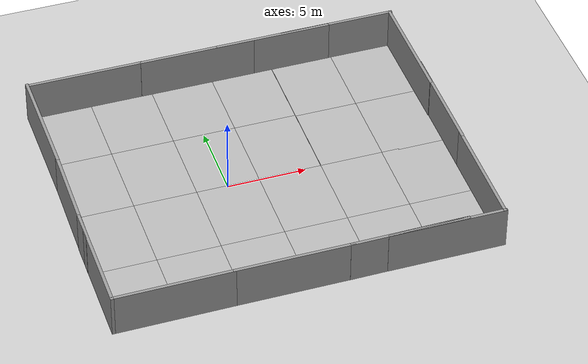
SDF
<sdf version="1.4">
 <world name="default">
  <light name="sun" type="directional">
   <pose>0 0 10 0 -0 0</pose>
   <diffuse>0.8 0.8 0.8 1</diffuse>
   <specular>0.2 0.2 0.2 1</specular>
   <attenuation>
    <range>1000</range>
    <constant>0.9</constant>
    <linear>0.01</linear>
    <quadratic>0.001</quadratic>
   </attenuation>
   <direction>-0.5 0.1 -0.9</direction>
  </light>
  <model name="ground_plane">
   <static>1</static>
   <link name="link">
    <collision name="collision">
     <geometry><plane><normal>0 0 1</normal><size>100 100</size></plane></geometry>
     <surface><friction><ode><mu>100</mu><mu2>50</mu2></ode></friction></surface>
    </collision>
    <visual name="visual">
     <cast_shadows>0</cast_shadows>
     <geometry><plane><normal>0 0 1</normal><size>100 100</size></plane></geometry>
     <material>
      <script><uri>file://media/materials/scripts/gazebo.material</uri><name>Gazebo/Grey</name></script>
     </material>
    </visual>
    <velocity_decay><linear>0</linear><angular>0</angular></velocity_decay>
   </link>
  </model>
  <physics type="ode">
   <max_step_size>0.001</max_step_size>
   <real_time_factor>1</real_time_factor>
   <real_time_update_rate>1000</real_time_update_rate>
   <gravity>0 0 -9.8</gravity>
  </physics>
  <scene><ambient>0.4 0.4 0.4 1</ambient><background>0.7 0.7 0.7 1</background><shadows>1</shadows></scene>
  <spherical_coordinates>
   <surface_model>EARTH_WGS84</surface_model>
   <latitude_deg>0</latitude_deg>
   <longitude_deg>0</longitude_deg>
   <elevation>0</elevation>
   <heading_deg>0</heading_deg>
  </spherical_coordinates>
  <model name="grey_wall">
   <static>1</static>
   <link name="link">
    <pose>0 0 1.4 0 -0 0</pose>
    <collision name="collision"><geometry><box><size>7.5 0.2 2.8</size></box></geometry></collision>
    <visual name="visual">
     <cast_shadows>0</cast_shadows>
     <geometry><box><size>7.5 0.2 2.8</size></box></geometry>
     <material>
      <script>
       <uri>model://grey_wall/materials/scripts</uri>
       <uri>model://grey_wall/materials/textures</uri>
       <name>vrc/grey_wall</name>
      </script>
     </material>
    </visual>
    <velocity_decay><linear>0</linear><angular>0</angular></velocity_decay>
   </link>
   <pose>-6.29738 9.84653 0 0 -0 0.000801</pose>
  </model>
  <model name="grey_wall_0">
   <static>1</static>
   <link name="link">
    <pose>0 0 1.4 0 -0 0</pose>
    <collision name="collision"><geometry><box><size>7.5 0.2 2.8</size></box></geometry></collision>
    <visual name="visual">
     <cast_shadows>0</cast_shadows>
     <geometry><box><size>7.5 0.2 2.8</size></box></geometry>
     <material>
      <script>
       <uri>model://grey_wall/materials/scripts</uri>
       <uri>model://grey_wall/materials/textures</uri>
       <name>vrc/grey_wall</name>
      </script>
     </material>
    </visual>
    <velocity_decay><linear>0</linear><angular>0</angular></velocity_decay>
   </link>
   <pose>-9.97339 6.2675 0 0 -0 1.57507</pose>
  </model>
  <model name="grey_wall_1">
   <static>1</static>
   <link name="link">
    <pose>0 0 1.4 0 -0 0</pose>
    <collision name="collision"><geometry><box><size>7.5 0.2 2.8</size></box></geometry></collision>
    <visual name="visual">
     <cast_shadows>0</cast_shadows>
     <geometry><box><size>7.5 0.2 2.8</size></box></geometry>
     <material>
      <script>
       <uri>model://grey_wall/materials/scripts</uri>
       <uri>model://grey_wall/materials/textures</uri>
       <name>vrc/grey_wall</name>
      </script>
     </material>
    </visual>
    <velocity_decay><linear>0</linear><angular>0</angular></velocity_decay>
   </link>
   <pose>1.08107 9.84256 0 0 -0 0</pose>
  </model>
  <model name="grey_wall_2">
   <static>1</static>
   <link name="link">
    <pose>0 0 1.4 0 -0 0</pose>
    <collision name="collision"><geometry><box><size>7.5 0.2 2.8</size></box></geometry></collision>
    <visual name="visual">
     <cast_shadows>0</cast_shadows>
     <geometry><box><size>7.5 0.2 2.8</size></box></geometry>
     <material>
      <script>
       <uri>model://grey_wall/materials/scripts</uri>
       <uri>model://grey_wall/materials/textures</uri>
       <name>vrc/grey_wall</name>
      </script>
     </material>
    </visual>
    <velocity_decay><linear>0</linear><angular>0</angular></velocity_decay>
   </link>
   <pose>0.969775 -9.9536 0 0 -0 0</pose>
  </model>
  <model name="grey_wall_3">
   <static>1</static>
   <link name="link">
    <pose>0 0 1.4 0 -0 0</pose>
    <collision name="collision"><geometry><box><size>7.5 0.2 2.8</size></box></geometry></collision>
    <visual name="visual">
     <cast_shadows>0</cast_shadows>
     <geometry><box><size>7.5 0.2 2.8</size></box></geometry>
     <material>
      <script>
       <uri>model://grey_wall/materials/scripts</uri>
       <uri>model://grey_wall/materials/textures</uri>
       <name>vrc/grey_wall</name>
      </script>
     </material>
    </visual>
    <velocity_decay><linear>0</linear><angular>0</angular></velocity_decay>
   </link>
   <pose>-6.35027 -9.97183 0 0 -0 0.00465</pose>
  </model>
  <model name="grey_wall_4">
   <static>1</static>
   <link name="link">
    <pose>0 0 1.4 0 -0 0</pose>
    <collision name="collision"><geometry><box><size>7.5 0.2 2.8</size></box></geometry></collision>
    <visual name="visual">
     <cast_shadows>0</cast_shadows>
     <geometry><box><size>7.5 0.2 2.8</size></box></geometry>
     <material>
      <script>
       <uri>model://grey_wall/materials/scripts</uri>
       <uri>model://grey_wall/materials/textures</uri>
       <name>vrc/grey_wall</name>
      </script>
     </material>
    </visual>
    <velocity_decay><linear>0</linear><angular>0</angular></velocity_decay>
   </link>
   <pose>-10.0196 -0.994888 0 0 0 -1.5859</pose>
  </model>
  <model name="grey_wall_5">
   <static>1</static>
   <link name="link">
    <pose>0 0 1.4 0 -0 0</pose>
    <collision name="collision"><geometry><box><size>7.5 0.2 2.8</size></box></geometry></collision>
    <visual name="visual">
     <cast_shadows>0</cast_shadows>
     <geometry><box><size>7.5 0.2 2.8</size></box></geometry>
     <material>
      <script>
       <uri>model://grey_wall/materials/scripts</uri>
       <uri>model://grey_wall/materials/textures</uri>
       <name>vrc/grey_wall</name>
      </script>
     </material>
    </visual>
    <velocity_decay><linear>0</linear><angular>0</angular></velocity_decay>
   </link>
   <pose>14.0958 -6.28938 0 0 0 -1.57176</pose>
  </model>
  <model name="grey_wall_6">
   <static>1</static>
   <link name="link">
    <pose>0 0 1.4 0 -0 0</pose>
    <collision name="collision"><geometry><box><size>7.5 0.2 2.8</size></box></geometry></collision>
    <visual name="visual">
     <cast_shadows>0</cast_shadows>
     <geometry><box><size>7.5 0.2 2.8</size></box></geometry>
     <material>
      <script>
       <uri>model://grey_wall/materials/scripts</uri>
       <uri>model://grey_wall/materials/textures</uri>
       <name>vrc/grey_wall</name>
      </script>
     </material>
    </visual>
    <velocity_decay><linear>0</linear><angular>0</angular></velocity_decay>
   </link>
   <pose>14.0402 6.15104 0 0 0 -1.56247</pose>
  </model>
  <model name="grey_wall_7">
   <static>1</static>
   <link name="link">
    <pose>0 0 1.4 0 -0 0</pose>
    <collision name="collision"><geometry><box><size>7.5 0.2 2.8</size></box></geometry></collision>
    <visual name="visual">
     <cast_shadows>0</cast_shadows>
     <geometry><box><size>7.5 0.2 2.8</size></box></geometry>
     <material>
      <script>
       <uri>model://grey_wall/materials/scripts</uri>
       <uri>model://grey_wall/materials/textures</uri>
       <name>vrc/grey_wall</name>
      </script>
     </material>
    </visual>
    <velocity_decay><linear>0</linear><angular>0</angular></velocity_decay>
   </link>
   <pose>6.10797 9.84916 0 0 -0 0</pose>
  </model>
  <model name="grey_wall_8">
   <static>1</static>
   <link name="link">
    <pose>0 0 1.4 0 -0 0</pose>
    <collision name="collision"><geometry><box><size>7.5 0.2 2.8</size></box></geometry></collision>
    <visual name="visual">
     <cast_shadows>0</cast_shadows>
     <geometry><box><size>7.5 0.2 2.8</size></box></geometry>
     <material>
      <script>
       <uri>model://grey_wall/materials/scripts</uri>
       <uri>model://grey_wall/materials/textures</uri>
       <name>vrc/grey_wall</name>
      </script>
     </material>
    </visual>
    <velocity_decay><linear>0</linear><angular>0</angular></velocity_decay>
   </link>
   <pose>8.16072 -9.92982 0 0 -0 0.008161</pose>
  </model>
  <model name="grey_wall_9">
   <static>1</static>
   <link name="link">
    <pose>0 0 1.4 0 -0 0</pose>
    <collision name="collision"><geometry><box><size>7.5 0.2 2.8</size></box></geometry></collision>
    <visual name="visual">
     <cast_shadows>0</cast_shadows>
     <geometry><box><size>7.5 0.2 2.8</size></box></geometry>
     <material>
      <script>
       <uri>model://grey_wall/materials/scripts</uri>
       <uri>model://grey_wall/materials/textures</uri>
       <name>vrc/grey_wall</name>
      </script>
     </material>
    </visual>
    <velocity_decay><linear>0</linear><angular>0</angular></velocity_decay>
   </link>
   <pose>-10.0691 -6.34271 0 0 0 -1.57267</pose>
  </model>
  <model name="grey_wall_10">
   <static>1</static>
   <link name="link">
    <pose>0 0 1.4 0 -0 0</pose>
    <collision name="collision"><geometry><box><size>7.5 0.2 2.8</size></box></geometry></collision>
    <visual name="visual">
     <cast_shadows>0</cast_shadows>
     <geometry><box><size>7.5 0.2 2.8</size></box></geometry>
     <material>
      <script>
       <uri>model://grey_wall/materials/scripts</uri>
       <uri>model://grey_wall/materials/textures</uri>
       <name>vrc/grey_wall</name>
      </script>
     </material>
    </visual>
    <velocity_decay><linear>0</linear><angular>0</angular></velocity_decay>
   </link>
   <pose>14.1043 0.796248 0 0 0 -1.5675</pose>
  </model>
  <model name="mud_box">
   <static>1</static>
   <link name="link">
    <collision name="collision"><geometry><box><size>8 10 0.2</size></box></geometry></collision>
    <visual name="visual_1">
     <pose>-2 2.5 0 0 -0 0</pose>
     <cast_shadows>0</cast_shadows>
     <geometry><box><size>4 5 0.2</size></box></geometry>
     <material>
      <script>
       <uri>model://mud_box/materials/scripts</uri>
       <uri>model://mud_box/materials/textures</uri>
       <name>vrc/mud</name>
      </script>
     </material>
    </visual>
    <visual name="visual_2">
     <pose>2 2.5 0 0 -0 0</pose>
     <cast_shadows>0</cast_shadows>
     <geometry><box><size>4 5 0.2</size></box></geometry>
     <material>
      <script>
       <uri>model://mud_box/materials/scripts</uri>
       <uri>model://mud_box/materials/textures</uri>
       <name>vrc/mud</name>
      </script>
     </material>
    </visual>
    <visual name="visual_3">
     <pose>2 -2.5 0 0 -0 0</pose>
     <cast_shadows>0</cast_shadows>
     <geometry><box><size>4 5 0.2</size></box></geometry>
     <material>
      <script>
       <uri>model://mud_box/materials/scripts</uri>
       <uri>model://mud_box/materials/textures</uri>
       <name>vrc/mud</name>
      </script>
     </material>
    </visual>
    <visual name="visual_4">
     <pose>-2 -2.5 0 0 -0 0</pose>
     <cast_shadows>0</cast_shadows>
     <geometry><box><size>4 5 0.2</size></box></geometry>
     <material>
      <script>
       <uri>model://mud_box/materials/scripts</uri>
       <uri>model://mud_box/materials/textures</uri>
       <name>vrc/mud</name>
      </script>
     </material>
    </visual>
    <velocity_decay><linear>0</linear><angular>0</angular></velocity_decay>
   </link>
   <pose>-6 -5 0 0 -0 0</pose>
  </model>
  <model name="mud_box_0">
   <static>1</static>
   <link name="link">
    <collision name="collision"><geometry><box><size>8 10 0.2</size></box></geometry></collision>
    <visual name="visual_1">
     <pose>-2 2.5 0 0 -0 0</pose>
     <cast_shadows>0</cast_shadows>
     <geometry><box><size>4 5 0.2</size></box></geometry>
     <material>
      <script>
       <uri>model://mud_box/materials/scripts</uri>
       <uri>model://mud_box/materials/textures</uri>
       <name>vrc/mud</name>
      </script>
     </material>
    </visual>
    <visual name="visual_2">
     <pose>2 2.5 0 0 -0 0</pose>
     <cast_shadows>0</cast_shadows>
     <geometry><box><size>4 5 0.2</size></box></geometry>
     <material>
      <script>
       <uri>model://mud_box/materials/scripts</uri>
       <uri>model://mud_box/materials/textures</uri>
       <name>vrc/mud</name>
      </script>
     </material>
    </visual>
    <visual name="visual_3">
     <pose>2 -2.5 0 0 -0 0</pose>
     <cast_shadows>0</cast_shadows>
     <geometry><box><size>4 5 0.2</size></box></geometry>
     <material>
      <script>
       <uri>model://mud_box/materials/scripts</uri>
       <uri>model://mud_box/materials/textures</uri>
       <name>vrc/mud</name>
      </script>
     </material>
    </visual>
    <visual name="visual_4">
     <pose>-2 -2.5 0 0 -0 0</pose>
     <cast_shadows>0</cast_shadows>
     <geometry><box><size>4 5 0.2</size></box></geometry>
     <material>
      <script>
       <uri>model://mud_box/materials/scripts</uri>
       <uri>model://mud_box/materials/textures</uri>
       <name>vrc/mud</name>
      </script>
     </material>
    </visual>
    <velocity_decay><linear>0</linear><angular>0</angular></velocity_decay>
   </link>
   <pose>-6 5 0 0 -0 0</pose>
  </model>
  <model name="mud_box_1">
   <static>1</static>
   <link name="link">
    <collision name="collision"><geometry><box><size>8 10 0.2</size></box></geometry></collision>
    <visual name="visual_1">
     <pose>-2 2.5 0 0 -0 0</pose>
     <cast_shadows>0</cast_shadows>
     <geometry><box><size>4 5 0.2</size></box></geometry>
     <material>
      <script>
       <uri>model://mud_box/materials/scripts</uri>
       <uri>model://mud_box/materials/textures</uri>
       <name>vrc/mud</name>
      </script>
     </material>
    </visual>
    <visual name="visual_2">
     <pose>2 2.5 0 0 -0 0</pose>
     <cast_shadows>0</cast_shadows>
     <geometry><box><size>4 5 0.2</size></box></geometry>
     <material>
      <script>
       <uri>model://mud_box/materials/scripts</uri>
       <uri>model://mud_box/materials/textures</uri>
       <name>vrc/mud</name>
      </script>
     </material>
    </visual>
    <visual name="visual_3">
     <pose>2 -2.5 0 0 -0 0</pose>
     <cast_shadows>0</cast_shadows>
     <geometry><box><size>4 5 0.2</size></box></geometry>
     <material>
      <script>
       <uri>model://mud_box/materials/scripts</uri>
       <uri>model://mud_box/materials/textures</uri>
       <name>vrc/mud</name>
      </script>
     </material>
    </visual>
    <visual name="visual_4">
     <pose>-2 -2.5 0 0 -0 0</pose>
     <cast_shadows>0</cast_shadows>
     <geometry><box><size>4 5 0.2</size></box></geometry>
     <material>
      <script>
       <uri>model://mud_box/materials/scripts</uri>
       <uri>model://mud_box/materials/textures</uri>
       <name>vrc/mud</name>
      </script>
     </material>
    </visual>
    <velocity_decay><linear>0</linear><angular>0</angular></velocity_decay>
   </link>
   <pose>2 5 0 0 -0 0</pose>
  </model>
  <model name="mud_box_2">
   <static>1</static>
   <link name="link">
    <collision name="collision"><geometry><box><size>8 10 0.2</size></box></geometry></collision>
    <visual name="visual_1">
     <pose>-2 2.5 0 0 -0 0</pose>
     <cast_shadows>0</cast_shadows>
     <geometry><box><size>4 5 0.2</size></box></geometry>
     <material>
      <script>
       <uri>model://mud_box/materials/scripts</uri>
       <uri>model://mud_box/materials/textures</uri>
       <name>vrc/mud</name>
      </script>
     </material>
    </visual>
    <visual name="visual_2">
     <pose>2 2.5 0 0 -0 0</pose>
     <cast_shadows>0</cast_shadows>
     <geometry><box><size>4 5 0.2</size></box></geometry>
     <material>
      <script>
       <uri>model://mud_box/materials/scripts</uri>
       <uri>model://mud_box/materials/textures</uri>
       <name>vrc/mud</name>
      </script>
     </material>
    </visual>
    <visual name="visual_3">
     <pose>2 -2.5 0 0 -0 0</pose>
     <cast_shadows>0</cast_shadows>
     <geometry><box><size>4 5 0.2</size></box></geometry>
     <material>
      <script>
       <uri>model://mud_box/materials/scripts</uri>
       <uri>model://mud_box/materials/textures</uri>
       <name>vrc/mud</name>
      </script>
     </material>
    </visual>
    <visual name="visual_4">
     <pose>-2 -2.5 0 0 -0 0</pose>
     <cast_shadows>0</cast_shadows>
     <geometry><box><size>4 5 0.2</size></box></geometry>
     <material>
      <script>
       <uri>model://mud_box/materials/scripts</uri>
       <uri>model://mud_box/materials/textures</uri>
       <name>vrc/mud</name>
      </script>
     </material>
    </visual>
    <velocity_decay><linear>0</linear><angular>0</angular></velocity_decay>
   </link>
   <pose>2 -5 0 0 -0 0</pose>
  </model>
  <model name="mud_box_3">
   <static>1</static>
   <link name="link">
    <collision name="collision"><geometry><box><size>8 10 0.2</size></box></geometry></collision>
    <visual name="visual_1">
     <pose>-2 2.5 0 0 -0 0</pose>
     <cast_shadows>0</cast_shadows>
     <geometry><box><size>4 5 0.2</size></box></geometry>
     <material>
      <script>
       <uri>model://mud_box/materials/scripts</uri>
       <uri>model://mud_box/materials/textures</uri>
       <name>vrc/mud</name>
      </script>
     </material>
    </visual>
    <visual name="visual_2">
     <pose>2 2.5 0 0 -0 0</pose>
     <cast_shadows>0</cast_shadows>
     <geometry><box><size>4 5 0.2</size></box></geometry>
     <material>
      <script>
       <uri>model://mud_box/materials/scripts</uri>
       <uri>model://mud_box/materials/textures</uri>
       <name>vrc/mud</name>
      </script>
     </material>
    </visual>
    <visual name="visual_3">
     <pose>2 -2.5 0 0 -0 0</pose>
     <cast_shadows>0</cast_shadows>
     <geometry><box><size>4 5 0.2</size></box></geometry>
     <material>
      <script>
       <uri>model://mud_box/materials/scripts</uri>
       <uri>model://mud_box/materials/textures</uri>
       <name>vrc/mud</name>
      </script>
     </material>
    </visual>
    <visual name="visual_4">
     <pose>-2 -2.5 0 0 -0 0</pose>
     <cast_shadows>0</cast_shadows>
     <geometry><box><size>4 5 0.2</size></box></geometry>
     <material>
      <script>
       <uri>model://mud_box/materials/scripts</uri>
       <uri>model://mud_box/materials/textures</uri>
       <name>vrc/mud</name>
      </script>
     </material>
    </visual>
    <velocity_decay><linear>0</linear><angular>0</angular></velocity_decay>
   </link>
   <pose>10 -5 0 0 -0 0</pose>
  </model>
  <model name="mud_box_4">
   <static>1</static>
   <link name="link">
    <collision name="collision"><geometry><box><size>8 10 0.2</size></box></geometry></collision>
    <visual name="visual_1">
     <pose>-2 2.5 0 0 -0 0</pose>
     <cast_shadows>0</cast_shadows>
     <geometry><box><size>4 5 0.2</size></box></geometry>
     <material>
      <script>
       <uri>model://mud_box/materials/scripts</uri>
       <uri>model://mud_box/materials/textures</uri>
       <name>vrc/mud</name>
      </script>
     </material>
    </visual>
    <visual name="visual_2">
     <pose>2 2.5 0 0 -0 0</pose>
     <cast_shadows>0</cast_shadows>
     <geometry><box><size>4 5 0.2</size></box></geometry>
     <material>
      <script>
       <uri>model://mud_box/materials/scripts</uri>
       <uri>model://mud_box/materials/textures</uri>
       <name>vrc/mud</name>
      </script>
     </material>
    </visual>
    <visual name="visual_3">
     <pose>2 -2.5 0 0 -0 0</pose>
     <cast_shadows>0</cast_shadows>
     <geometry><box><size>4 5 0.2</size></box></geometry>
     <material>
      <script>
       <uri>model://mud_box/materials/scripts</uri>
       <uri>model://mud_box/materials/textures</uri>
       <name>vrc/mud</name>
      </script>
     </material>
    </visual>
    <visual name="visual_4">
     <pose>-2 -2.5 0 0 -0 0</pose>
     <cast_shadows>0</cast_shadows>
     <geometry><box><size>4 5 0.2</size></box></geometry>
     <material>
      <script>
       <uri>model://mud_box/materials/scripts</uri>
       <uri>model://mud_box/materials/textures</uri>
       <name>vrc/mud</name>
      </script>
     </material>
    </visual>
    <velocity_decay><linear>0</linear><angular>0</angular></velocity_decay>
   </link>
   <pose>10.019 4.91504 0 0 -0 0</pose>
  </model>
  <model name="grey_wall_11">
   <static>1</static>
   <link name="link">
    <pose>0 0 1.4 0 -0 0</pose>
    <collision name="collision"><geometry><box><size>7.5 0.2 2.8</size></box></geometry></collision>
    <visual name="visual">
     <cast_shadows>0</cast_shadows>
     <geometry><box><size>7.5 0.2 2.8</size></box></geometry>
     <material>
      <script>
       <uri>model://grey_wall/materials/scripts</uri>
       <uri>model://grey_wall/materials/textures</uri>
       <name>vrc/grey_wall</name>
      </script>
     </material>
    </visual>
    <velocity_decay><linear>0</linear><angular>0</angular></velocity_decay>
   </link>
   <pose>10.405 9.86053 0 0 -0 0</pose>
  </model>
  <model name="grey_wall_12">
   <static>1</static>
   <link name="link">
    <pose>0 0 1.4 0 -0 0</pose>
    <collision name="collision"><geometry><box><size>7.5 0.2 2.8</size></box></geometry></collision>
    <visual name="visual">
     <cast_shadows>0</cast_shadows>
     <geometry><box><size>7.5 0.2 2.8</size></box></geometry>
     <material>
      <script>
       <uri>model://grey_wall/materials/scripts</uri>
       <uri>model://grey_wall/materials/textures</uri>
       <name>vrc/grey_wall</name>
      </script>
     </material>
    </visual>
    <velocity_decay><linear>0</linear><angular>0</angular></velocity_decay>
   </link>
   <pose>10.5037 -9.94803 0 0 -0 0</pose>
  </model>
 </world>
</sdf>
